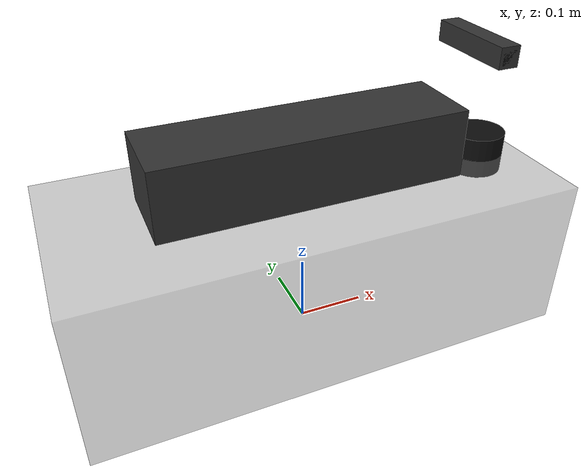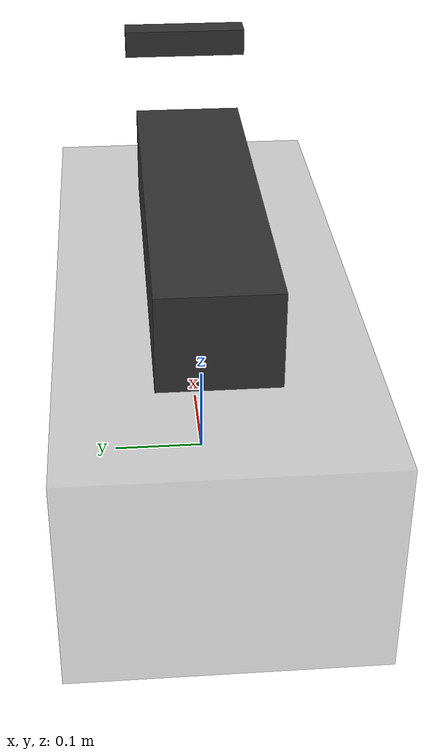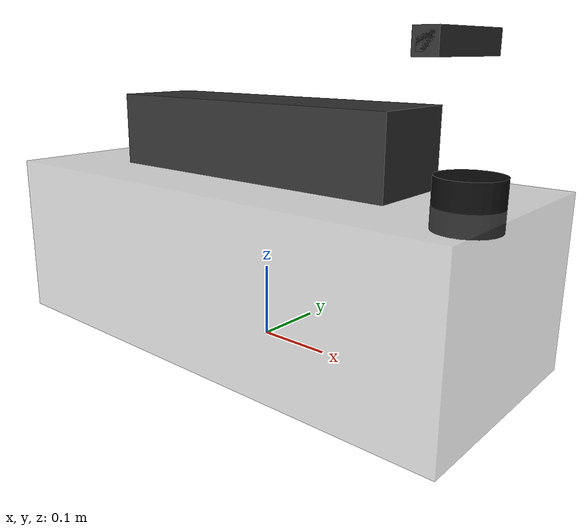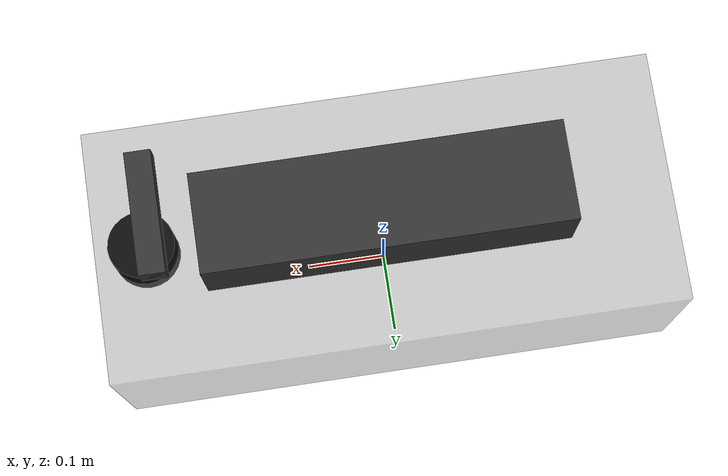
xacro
<?xml version="1.0"?>
<robot name="go2" xmlns:xacro="http://www.ros.org/wiki/xacro">

  <!-- ═══════════════════════════════════════════════════════════════════════
       Arguments
  ════════════════════════════════════════════════════════════════════════════ -->
  <xacro:arg name="use_gazebo" default="false"/>

  <!-- ═══════════════════════════════════════════════════════════════════════
       Physical constants
  ════════════════════════════════════════════════════════════════════════════ -->
  <xacro:property name="body_length"  value="0.440"/>   <!-- trunk X -->
  <xacro:property name="body_width"   value="0.060"/>   <!-- trunk half-width in Y -->
  <xacro:property name="body_height"  value="0.100"/>   <!-- trunk Z -->
  <xacro:property name="body_mass"    value="6.921"/>

  <!-- Full robot standing envelope including legs (Unitree Go2 official specs) -->
  <xacro:property name="stance_length"  value="0.700"/>  <!-- full X with legs -->
  <xacro:property name="stance_width"   value="0.310"/>  <!-- full Y with legs -->
  <xacro:property name="stance_height"  value="0.230"/>

  <!-- Nominal standing torso centre height from ground [m]. -->
  <xacro:property name="standing_height" value="0.28"/>

  <!-- Front-top sensor mount matching official Unitree Go2 radar_joint -->
  <xacro:property name="lidar_x" value="0.28945"/>
  <xacro:property name="lidar_y" value="0.0"/>
  <xacro:property name="lidar_z" value="-0.046825"/>
  <xacro:property name="lidar_r" value="0.0"/>
  <xacro:property name="lidar_p" value="0.0"/>
  <xacro:property name="lidar_yaw" value="0.0"/>

  <link name="base_footprint">
    <visual>
      <geometry><box size="0.001 0.001 0.001"/></geometry>
    </visual>
  </link>

  <!-- ═══════════════════════════════════════════════════════════════════════
       base_link  —  robot body centre
  ════════════════════════════════════════════════════════════════════════════ -->
  <joint name="base_footprint_to_base_link" type="fixed">
    <parent link="base_footprint"/>
    <child  link="base_link"/>
    <origin xyz="0 0 ${standing_height}" rpy="0 0 0"/>
  </joint>

  <link name="base_link">
    <visual>
      <origin xyz="0 0 0" rpy="0 0 0"/>
      <geometry>
        <box size="${body_length} ${body_width*2} ${body_height}"/>
      </geometry>
      <material name="dark_grey">
        <color rgba="0.2 0.2 0.2 1.0"/>
      </material>
    </visual>
    <!-- Leg stance envelope — represents full swept area including legs.
         Positioned at z = -(standing_height - stance_height/2) relative to
         base_link, which is: -(0.28 - 0.115) = -0.165 m -->
    <visual name="stance_visual">
      <origin xyz="0 0 ${-(standing_height - stance_height/2)}" rpy="0 0 0"/>
      <geometry>
        <box size="${stance_length} ${stance_width} ${stance_height}"/>
      </geometry>
      <material name="stance_grey">
        <color rgba="0.5 0.5 0.5 0.4"/>
      </material>
    </visual>
    <collision>
      <origin xyz="0 0 0" rpy="0 0 0"/>
      <geometry>
        <box size="${body_length} ${body_width*2} ${body_height}"/>
      </geometry>
    </collision>
    <!-- Leg stance envelope — represents full swept area including legs.
         Positioned at z = -(standing_height - stance_height/2) relative to
         base_link, which is: -(0.28 - 0.115) = -0.165 m -->
    <collision>
      <origin xyz="0 0 ${-(standing_height - stance_height/2)}" rpy="0 0 0"/>
      <geometry>
        <box size="${stance_length} ${stance_width} ${stance_height}"/>
      </geometry>
    </collision>
    <inertial>
      <origin xyz="0.021112 0.0 -0.005366" rpy="0 0 0"/>
      <mass value="${body_mass}"/>
      <inertia ixx="0.02448"  ixy="0.00012166" ixz="0.0014849"
               iyy="0.098077" iyz="-0.0000312"
               izz="0.107"/>
    </inertial>
  </link>

  <joint name="base_link_to_imu" type="fixed">
    <parent link="base_link"/>
    <child  link="imu_link"/>
    <origin xyz="0 0 0" rpy="0 0 0"/>
  </joint>

  <link name="imu_link">
    <inertial>
      <mass value="0.001"/>
      <origin xyz="0 0 0" rpy="0 0 0"/>
      <inertia ixx="1e-7" ixy="0" ixz="0" iyy="1e-7" iyz="0" izz="1e-7"/>
    </inertial>
  </link>

  <joint name="base_link_to_lidar" type="fixed">
    <parent link="base_link"/>
    <child  link="lidar_link"/>
    <origin xyz="${lidar_x} ${lidar_y} ${lidar_z}" rpy="${lidar_r} ${lidar_p} ${lidar_yaw}"/>
  </joint>

  <link name="lidar_link">
    <visual>
      <origin xyz="0 0 0" rpy="0 0 0"/>
      <geometry>
        <cylinder radius="0.04" length="0.06"/>
      </geometry>
      <material name="lidar_black">
        <color rgba="0.05 0.05 0.05 1.0"/>
      </material>
    </visual>
    <collision>
      <origin xyz="0 0 0" rpy="0 0 0"/>
      <geometry>
        <cylinder radius="0.04" length="0.06"/>
      </geometry>
    </collision>
    <inertial>
      <mass value="0.001"/>
      <origin xyz="0 0 0" rpy="0 0 0"/>
      <inertia ixx="1e-7" ixy="0" ixz="0" iyy="1e-7" iyz="0" izz="1e-7"/>
    </inertial>
  </link>

  <joint name="base_link_to_stereo_camera" type="fixed">
    <parent link="base_link"/>
    <child  link="stereo_camera_link"/>
    <origin xyz="0.265 0.0 0.12" rpy="0 0 0"/>
  </joint>

  <link name="stereo_camera_link">
    <visual>
      <geometry><box size="0.030 0.140 0.030"/></geometry>
      <material name="dark_grey"/>
    </visual>
    <inertial>
      <mass value="0.10"/>
      <inertia ixx="0.0001" ixy="0" ixz="0" iyy="0.0001" iyz="0" izz="0.0001"/>
    </inertial>
  </link>

  <joint name="stereo_camera_to_left" type="fixed">
    <parent link="stereo_camera_link"/>
    <child  link="stereo_left_link"/>
    <origin xyz="0 0.06 0" rpy="0 0 0"/>
  </joint>

  <link name="stereo_left_link">
    <visual>
      <geometry><box size="0.020 0.020 0.020"/></geometry>
      <material name="dark_grey"/>
    </visual>
    <inertial>
      <mass value="0.010"/>
      <inertia ixx="1e-5" ixy="0" ixz="0" iyy="1e-5" iyz="0" izz="1e-5"/>
    </inertial>
  </link>

  <joint name="stereo_camera_to_right" type="fixed">
    <parent link="stereo_camera_link"/>
    <child  link="stereo_right_link"/>
    <origin xyz="0 -0.06 0" rpy="0 0 0"/>
  </joint>

  <link name="stereo_right_link">
    <visual>
      <geometry><box size="0.020 0.020 0.020"/></geometry>
      <material name="dark_grey"/>
    </visual>
    <inertial>
      <mass value="0.010"/>
      <inertia ixx="1e-5" ixy="0" ixz="0" iyy="1e-5" iyz="0" izz="1e-5"/>
    </inertial>
  </link>

  <xacro:if value="$(arg use_gazebo)">

    <!-- Gazebo material -->
    <gazebo reference="base_link">
      <material>Gazebo/DarkGrey</material>
    </gazebo>

    <!-- TODO(sim): Add Gazebo LiDAR ray plugin on lidar_link -->
    <!-- TODO(sim): Add Gazebo IMU plugin on imu_link -->
    <!-- TODO(sim): Add differential-drive or effort controller plugin -->

  </xacro:if>

</robot>
